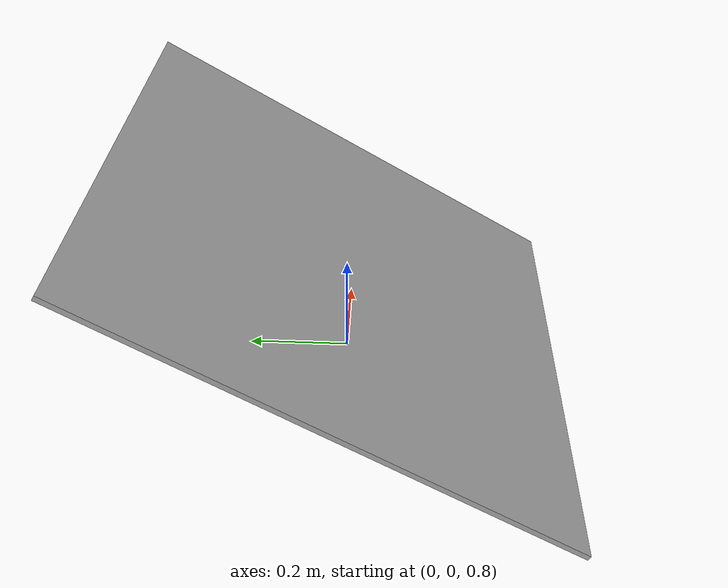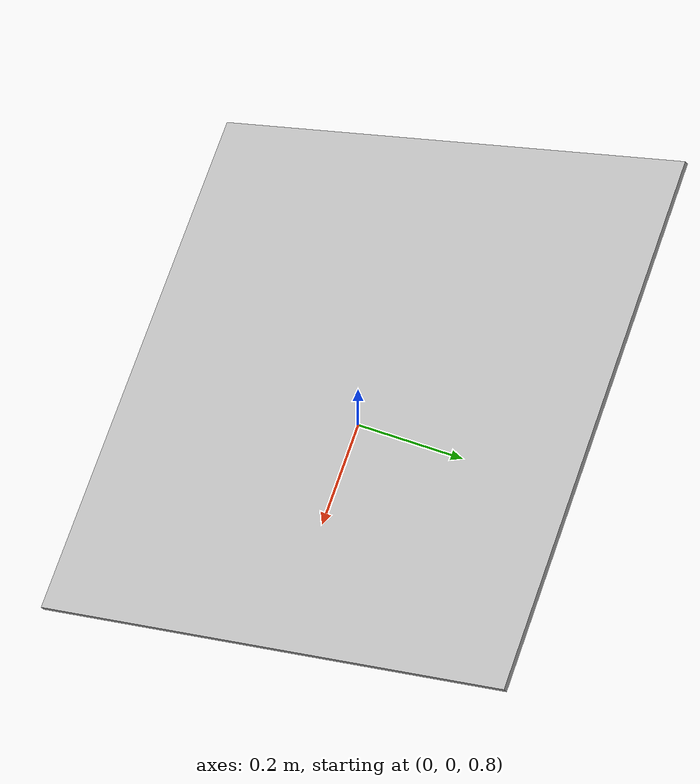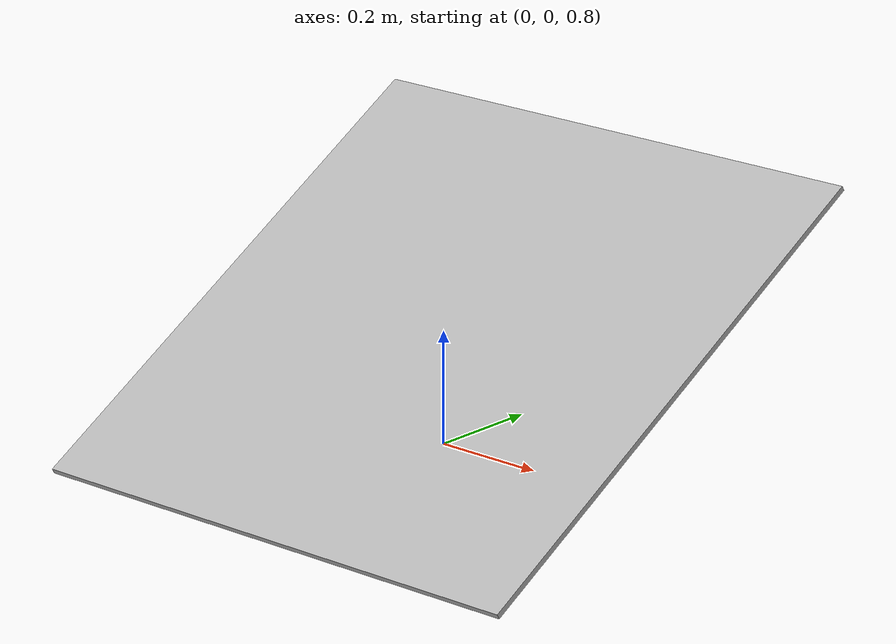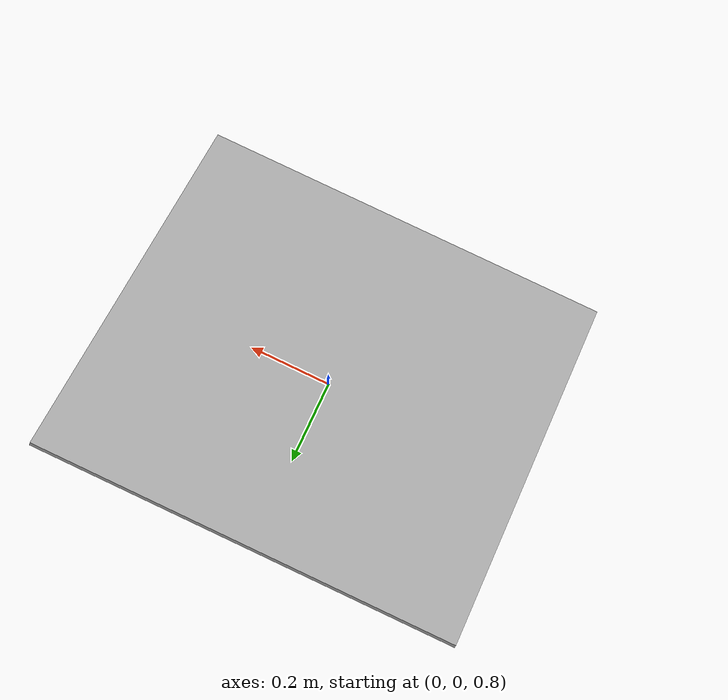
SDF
<?xml version='1.0'?>
<sdf version='1.6'>
  <model name='ArTag0'>
    <link name='main'>
    <pose frame=''>0 0 1.0 0.53 0 0</pose>
      <visual name='main_Visual'>
        <geometry>
          <box>
          <size>1.0 1.0 0.01</size>
          </box>
        </geometry>
           <material>
          <script>
            <uri>model://ArTag0/materials/scripts</uri>
            <uri>model://ArTag0/materials/textures</uri>
            <name>ArTag0</name>
          </script>
        </material>
      </visual>
     </link>
    <static>1</static>
  </model>
</sdf>
